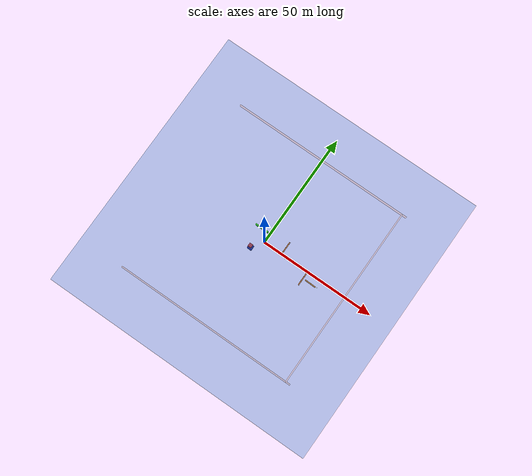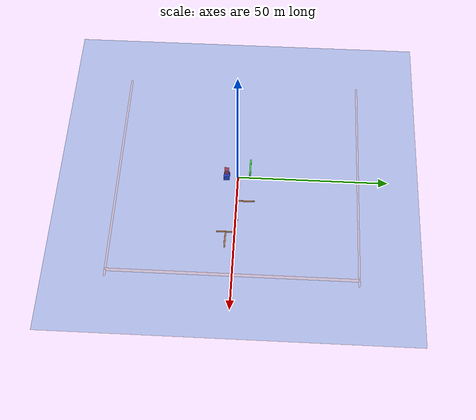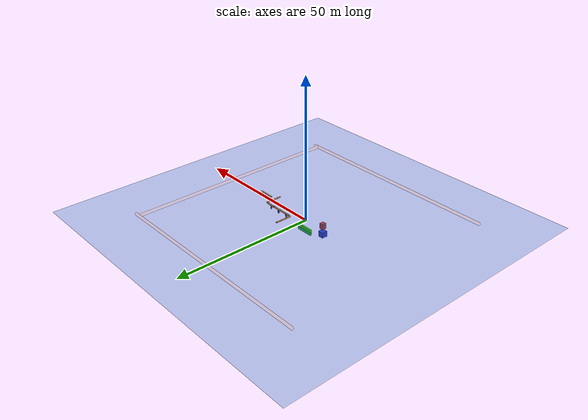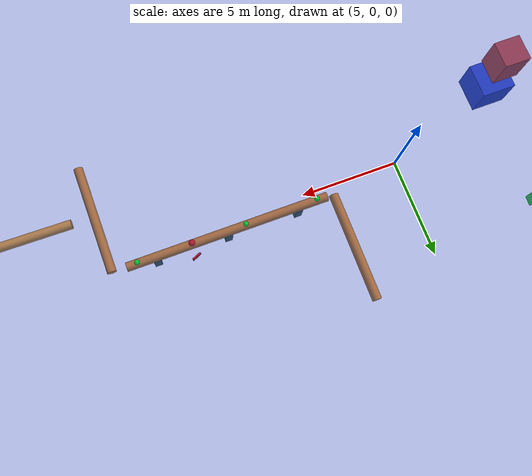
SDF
<sdf version="1.6">
 <world name="bluerov2_heavy_underwater">
  <plugin filename="gz-sim-physics-system" name="gz::sim::systems::Physics"/>
  <plugin filename="gz-sim-user-commands-system" name="gz::sim::systems::UserCommands"/>
  <plugin filename="gz-sim-scene-broadcaster-system" name="gz::sim::systems::SceneBroadcaster"/>
  <plugin filename="libgz-sim-imu-system.so" name="gz::sim::systems::Imu"/>
  <plugin filename="gz-sim-sensors-system" name="gz::sim::systems::Sensors">
   <render_engine>ogre2</render_engine>
  </plugin>
  <scene>
   <ambient>0.05 0.09 0.12 1</ambient>
   <background>0.02 0.10 0.16 1</background>
   <shadows>true</shadows>
   <fog>
    <type>linear</type>
    <color>0.02 0.18 0.24 1</color>
    <density>0.22</density>
    <start>0.8</start>
    <end>8.0</end>
   </fog>
  </scene>
  <plugin filename="gz-sim-buoyancy-system" name="gz::sim::systems::Buoyancy">
   <graded_buoyancy>
    <default_density>1000</default_density>
    <density_change><above_depth>0</above_depth><density>1</density></density_change>
   </graded_buoyancy>
   <enable>bluerov2_heavy</enable>
  </plugin>
  <include><uri>https://fuel.gazebosim.org/1.0/OpenRobotics/models/Sun</uri></include>
  <model name="obstacle_box_front">
   <static>true</static>
   <pose>-4 -4 -2 0 0 0</pose>
   <link name="link">
    <visual name="visual">
     <geometry><box><size>1.5 1.5 2.0</size></box></geometry>
     <material><ambient>0.8 0.2 0.2 1</ambient><diffuse>0.8 0.2 0.2 1</diffuse></material>
    </visual>
    <collision name="collision"><geometry><box><size>1.5 1.5 2.0</size></box></geometry></collision>
   </link>
  </model>
  <model name="obstacle_wall_right">
   <static>true</static>
   <pose>-4 4 0 0 0 0</pose>
   <link name="link">
    <visual name="visual">
     <geometry><box><size>6.0 0.5 2.0</size></box></geometry>
     <material><ambient>0.2 0.8 0.2 1</ambient><diffuse>0.2 0.8 0.2 1</diffuse></material>
    </visual>
    <collision name="collision"><geometry><box><size>6.0 0.5 2.0</size></box></geometry></collision>
   </link>
  </model>
  <model name="obstacle_box_left">
   <static>true</static>
   <pose>-4 -4 -5 0 0 0</pose>
   <link name="link">
    <visual name="visual">
     <geometry><box><size>2.0 2.0 2.0</size></box></geometry>
     <material><ambient>0.2 0.2 0.8 1</ambient><diffuse>0.2 0.2 0.8 1</diffuse></material>
    </visual>
    <collision name="collision"><geometry><box><size>2.0 2.0 2.0</size></box></geometry></collision>
   </link>
  </model>
  <model name="pipeline_straight">
   <static>true</static>
   <pose>14 0 -2 0 1.5708 0</pose>
   <link name="link">
    <visual name="visual">
     <geometry><cylinder><radius>0.25</radius><length>11.2</length></cylinder></geometry>
     <material><ambient>0.9 0.45 0.1 1</ambient><diffuse>0.9 0.45 0.1 1</diffuse></material>
    </visual>
    <collision name="collision">
     <geometry><cylinder><radius>0.25</radius><length>11.2</length></cylinder></geometry>
    </collision>
   </link>
  </model>
  <model name="pipeline_right">
   <static>true</static>
   <pose>20.4 -3 -2 1.5708 0 0</pose>
   <link name="link">
    <visual name="visual">
     <geometry><cylinder><radius>0.25</radius><length>6.0</length></cylinder></geometry>
     <material><ambient>0.9 0.45 0.1 1</ambient><diffuse>0.9 0.45 0.1 1</diffuse></material>
    </visual>
    <collision name="collision">
     <geometry><cylinder><radius>0.25</radius><length>6.0</length></cylinder></geometry>
    </collision>
   </link>
  </model>
  <model name="pipeline_left">
   <static>true</static>
   <pose>8 3 -2.15 1.5708 0 0</pose>
   <link name="link">
    <visual name="visual">
     <geometry><cylinder><radius>0.25</radius><length>6.0</length></cylinder></geometry>
     <material><ambient>0.9 0.45 0.1 1</ambient><diffuse>0.9 0.45 0.1 1</diffuse></material>
    </visual>
    <collision name="collision">
     <geometry><cylinder><radius>0.25</radius><length>6.0</length></cylinder></geometry>
    </collision>
   </link>
  </model>
  <model name="pipeline_elevated">
   <static>true</static>
   <pose>24 -3 -1.25 0.05 1.5708 0.03</pose>
   <link name="link">
    <visual name="visual">
     <geometry><cylinder><radius>0.25</radius><length>5.0</length></cylinder></geometry>
     <material><ambient>0.95 0.55 0.15 1</ambient><diffuse>0.95 0.55 0.15 1</diffuse></material>
    </visual>
    <collision name="collision">
     <geometry><cylinder><radius>0.25</radius><length>5.0</length></cylinder></geometry>
    </collision>
   </link>
  </model>
  <model name="pipeline_support_1">
   <static>true</static>
   <pose>10 0 -2.8 0 0 0</pose>
   <link name="link">
    <visual name="visual">
     <geometry><box><size>0.4 0.4 1.2</size></box></geometry>
     <material><ambient>0.3 0.3 0.3 1</ambient><diffuse>0.3 0.3 0.3 1</diffuse></material>
    </visual>
    <collision name="collision"><geometry><box><size>0.4 0.4 1.2</size></box></geometry></collision>
   </link>
  </model>
  <model name="pipeline_support_2">
   <static>true</static>
   <pose>14 0 -2.8 0 0 0</pose>
   <link name="link">
    <visual name="visual">
     <geometry><box><size>0.4 0.4 1.2</size></box></geometry>
     <material><ambient>0.3 0.3 0.3 1</ambient><diffuse>0.3 0.3 0.3 1</diffuse></material>
    </visual>
    <collision name="collision"><geometry><box><size>0.4 0.4 1.2</size></box></geometry></collision>
   </link>
  </model>
  <model name="pipeline_support_3">
   <static>true</static>
   <pose>18 0 -2.8 0 0 0</pose>
   <link name="link">
    <visual name="visual">
     <geometry><box><size>0.4 0.4 1.2</size></box></geometry>
     <material><ambient>0.3 0.3 0.3 1</ambient><diffuse>0.3 0.3 0.3 1</diffuse></material>
    </visual>
    <collision name="collision"><geometry><box><size>0.4 0.4 1.2</size></box></geometry></collision>
   </link>
  </model>
  <model name="pipeline_light_green_1">
   <static>true</static>
   <pose>9 0 -1.72 0 0 0</pose>
   <link name="link">
    <visual name="visual">
     <geometry><sphere><radius>0.14</radius></sphere></geometry>
     <material>
      <ambient>0.0 1.0 0.0 1</ambient>
      <diffuse>0.0 1.0 0.0 1</diffuse>
      <emissive>0.0 1.0 0.0 1</emissive>
     </material>
    </visual>
    <collision name="collision"><geometry><sphere><radius>0.14</radius></sphere></geometry></collision>
   </link>
  </model>
  <model name="pipeline_light_green_2">
   <static>true</static>
   <pose>13 0 -1.72 0 0 0</pose>
   <link name="link">
    <visual name="visual">
     <geometry><sphere><radius>0.14</radius></sphere></geometry>
     <material>
      <ambient>0.0 1.0 0.0 1</ambient>
      <diffuse>0.0 1.0 0.0 1</diffuse>
      <emissive>0.0 1.0 0.0 1</emissive>
     </material>
    </visual>
    <collision name="collision"><geometry><sphere><radius>0.14</radius></sphere></geometry></collision>
   </link>
  </model>
  <model name="pipeline_light_red_damage">
   <static>true</static>
   <pose>16 0 -1.70 0 0 0</pose>
   <link name="link">
    <visual name="visual">
     <geometry><sphere><radius>0.18</radius></sphere></geometry>
     <material>
      <ambient>1.0 0.0 0.0 1</ambient>
      <diffuse>1.0 0.0 0.0 1</diffuse>
      <emissive>1.0 0.0 0.0 1</emissive>
     </material>
    </visual>
    <collision name="collision"><geometry><sphere><radius>0.18</radius></sphere></geometry></collision>
   </link>
  </model>
  <model name="pipeline_light_green_3">
   <static>true</static>
   <pose>19 0 -1.72 0 0 0</pose>
   <link name="link">
    <visual name="visual">
     <geometry><sphere><radius>0.14</radius></sphere></geometry>
     <material>
      <ambient>0.0 1.0 0.0 1</ambient>
      <diffuse>0.0 1.0 0.0 1</diffuse>
      <emissive>0.0 1.0 0.0 1</emissive>
     </material>
    </visual>
    <collision name="collision"><geometry><sphere><radius>0.14</radius></sphere></geometry></collision>
   </link>
  </model>
  <model name="pipeline_repair_zone">
   <static>true</static>
   <pose>16 0.8 -1.55 0 0 0.4</pose>
   <link name="link">
    <visual name="visual">
     <geometry><box><size>0.5 0.08 0.35</size></box></geometry>
     <material>
      <ambient>1.0 0.0 0.0 1</ambient>
      <diffuse>1.0 0.0 0.0 1</diffuse>
      <emissive>0.5 0.0 0.0 1</emissive>
     </material>
    </visual>
    <collision name="collision"><geometry><box><size>0.5 0.08 0.35</size></box></geometry></collision>
   </link>
  </model>
  <model name="water_surface_visual">
   <static>true</static>
   <pose>0 0 0.05 0 0 0</pose>
   <link name="link">
    <visual name="visual">
     <geometry><box><size>120 120 0.02</size></box></geometry>
     <material><ambient>0.0 0.35 0.7 0.28</ambient><diffuse>0.0 0.35 0.7 0.28</diffuse></material>
    </visual>
   </link>
  </model>
  <model name="world_boundary_front">
   <static>true</static>
   <pose>38 0 -3 0 0 0</pose>
   <link name="link">
    <visual name="visual">
     <geometry><box><size>0.5 80 8</size></box></geometry>
     <material><ambient>0.1 0.1 0.1 0.15</ambient><diffuse>0.1 0.1 0.1 0.15</diffuse></material>
    </visual>
    <collision name="collision"><geometry><box><size>0.5 80 8</size></box></geometry></collision>
   </link>
  </model>
  <model name="world_boundary_left">
   <static>true</static>
   <pose>0 40 -3 0 0 0</pose>
   <link name="link">
    <visual name="visual">
     <geometry><box><size>80 0.5 8</size></box></geometry>
     <material><ambient>0.1 0.1 0.1 0.15</ambient><diffuse>0.1 0.1 0.1 0.15</diffuse></material>
    </visual>
    <collision name="collision"><geometry><box><size>80 0.5 8</size></box></geometry></collision>
   </link>
  </model>
  <model name="world_boundary_right">
   <static>true</static>
   <pose>0 -40 -3 0 0 0</pose>
   <link name="link">
    <visual name="visual">
     <geometry><box><size>80 0.5 8</size></box></geometry>
     <material><ambient>0.1 0.1 0.1 0.15</ambient><diffuse>0.1 0.1 0.1 0.15</diffuse></material>
    </visual>
    <collision name="collision"><geometry><box><size>80 0.5 8</size></box></geometry></collision>
   </link>
  </model>
  <model name="inspection_target">
   <static>true</static>
   <pose>27 -3 -1 0 0 0</pose>
   <link name="link">
    <visual name="visual">
     <geometry><sphere><radius>0.14</radius></sphere></geometry>
     <material><ambient>1.0 1.0 0.1 1</ambient><diffuse>1.0 1.0 0.1 1</diffuse></material>
    </visual>
    <collision name="collision"><geometry><sphere><radius>0.14</radius></sphere></geometry></collision>
   </link>
  </model>
 </world>
</sdf>
